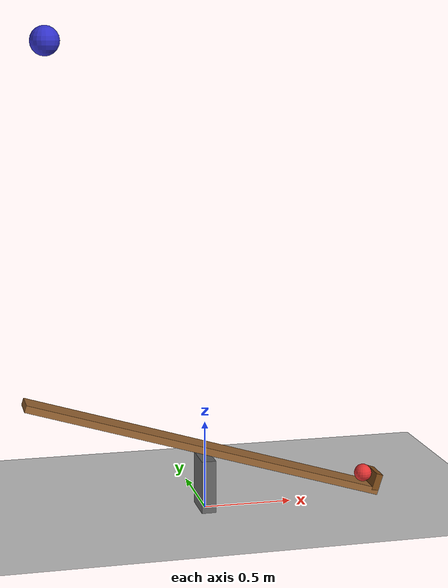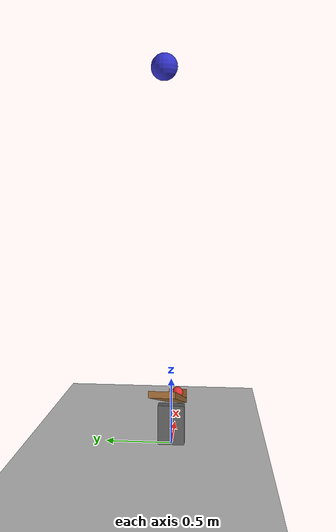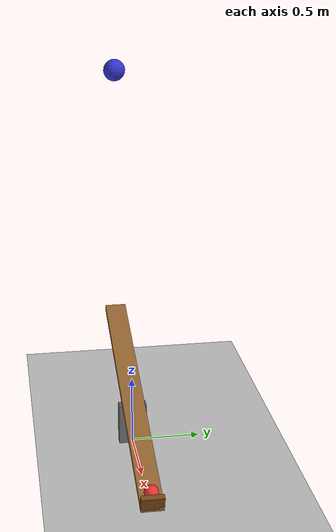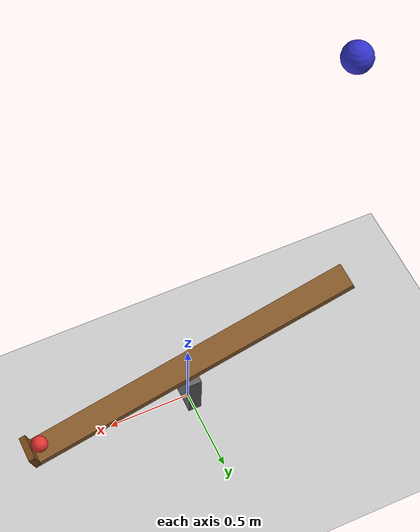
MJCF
<mujoco model="seesaw_catapult">
  <compiler angle="radian"/>
  <option timestep="0.002"/>
  <worldbody>
    <light name="sun" pos="0 0 4" dir="0 0 -1"/>
    <geom name="floor" type="plane" size="5 5 0.1" rgba="0.8 0.8 0.8 1"/>
    <geom name="pivot_post" type="box" pos="0 0 0.15" size="0.04 0.1 0.15" rgba="0.4 0.4 0.4 1"/>
    <body name="seesaw" pos="0 0 0.35" euler="0 0.3 0">
      <joint name="seesaw_hinge" type="hinge" axis="0 1 0" limited="true" range="-0.6 0"/>
      <geom name="seesaw_plank" type="box" size="1.05 0.08 0.02" mass="0.5" rgba="0.6 0.4 0.2 1"/>
      <geom name="seesaw_stop" type="box" pos="1.03 0 0.05" size="0.02 0.08 0.05" mass="0.02" rgba="0.5 0.3 0.1 1"/>
    </body>
    <body name="weight" pos="-0.85 0 2.6">
      <freejoint/>
      <geom name="weight" type="sphere" size="0.08" mass="1" rgba="0.2 0.2 0.8 1"/>
    </body>
    <body name="ball" pos="0.9378 0 0.1332">
      <freejoint/>
      <geom name="ball" type="sphere" size="0.05" mass="0.1" rgba="0.9 0.2 0.2 1"/>
    </body>
  </worldbody>
</mujoco>
